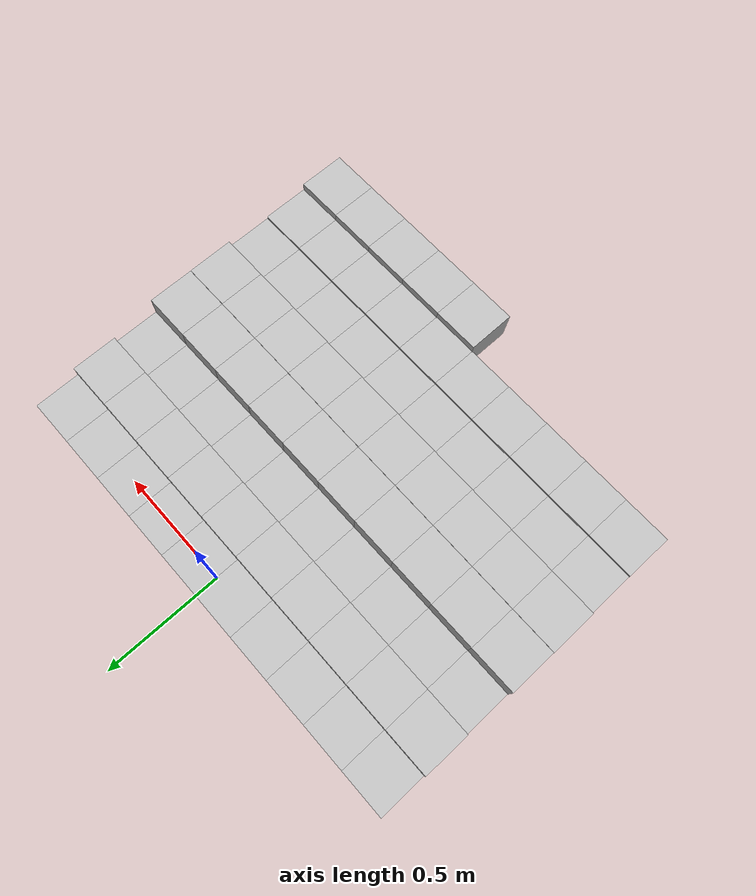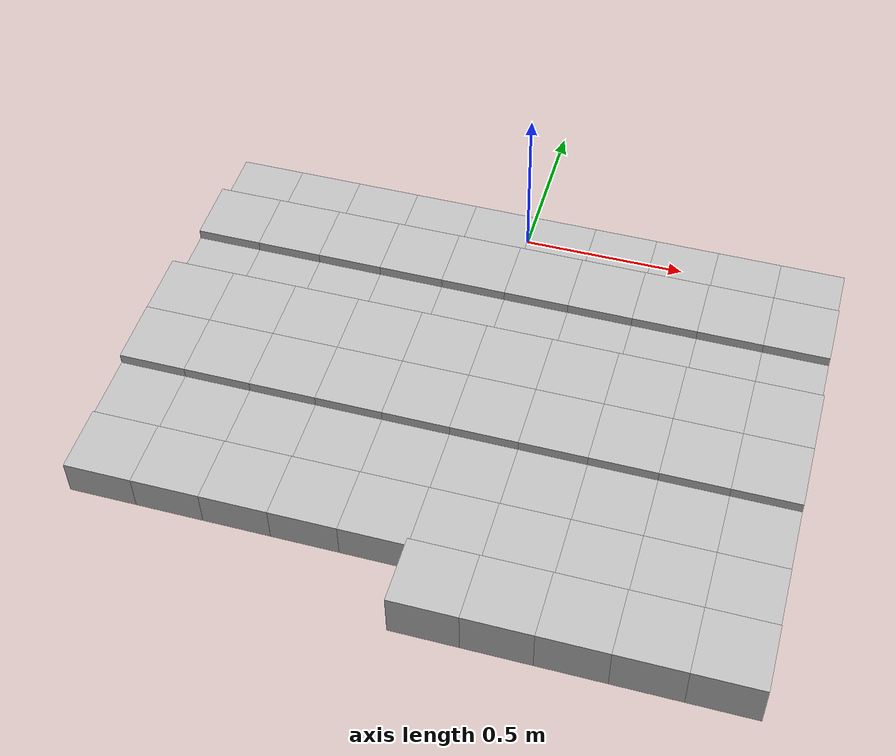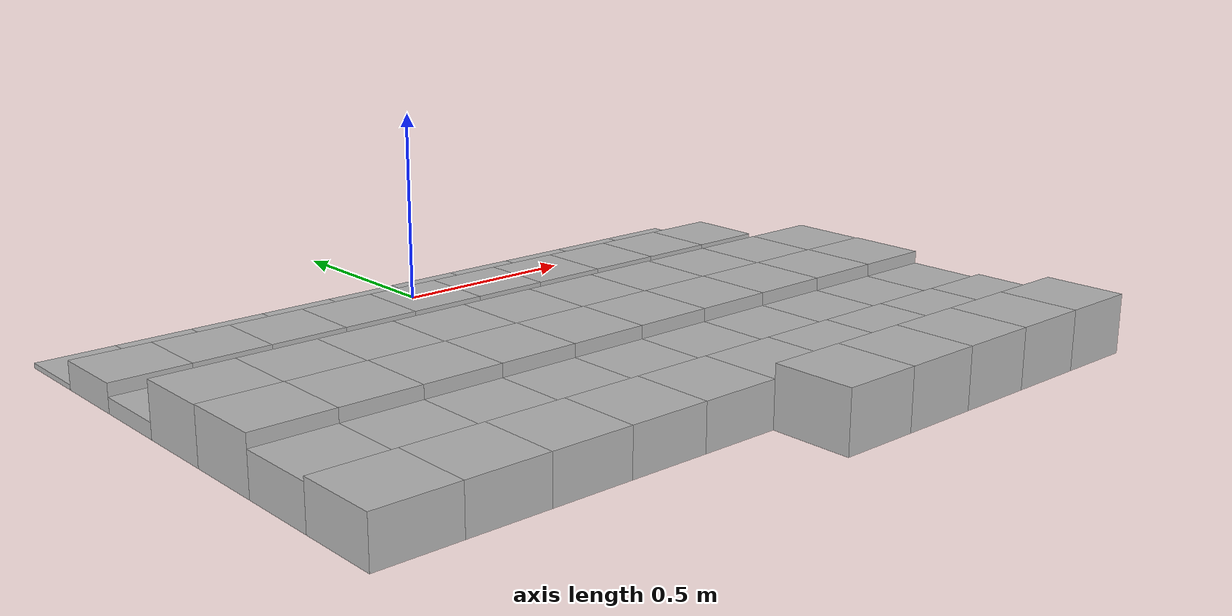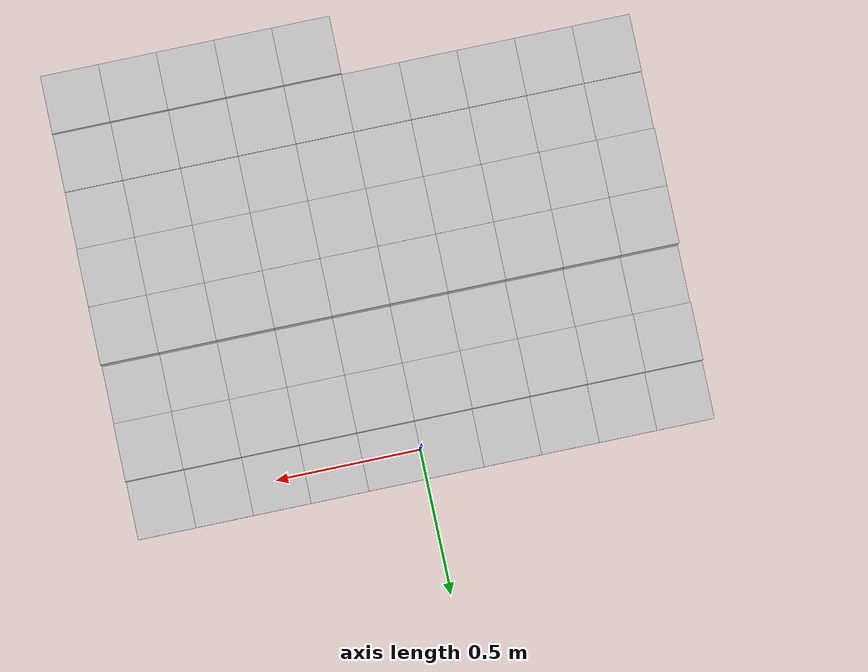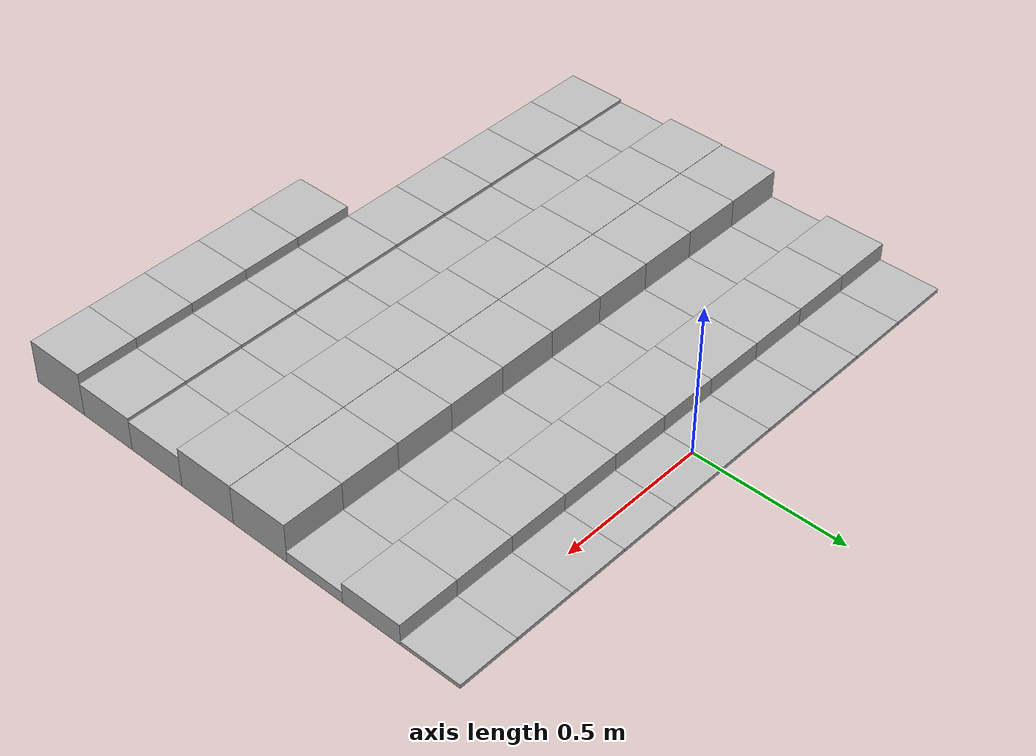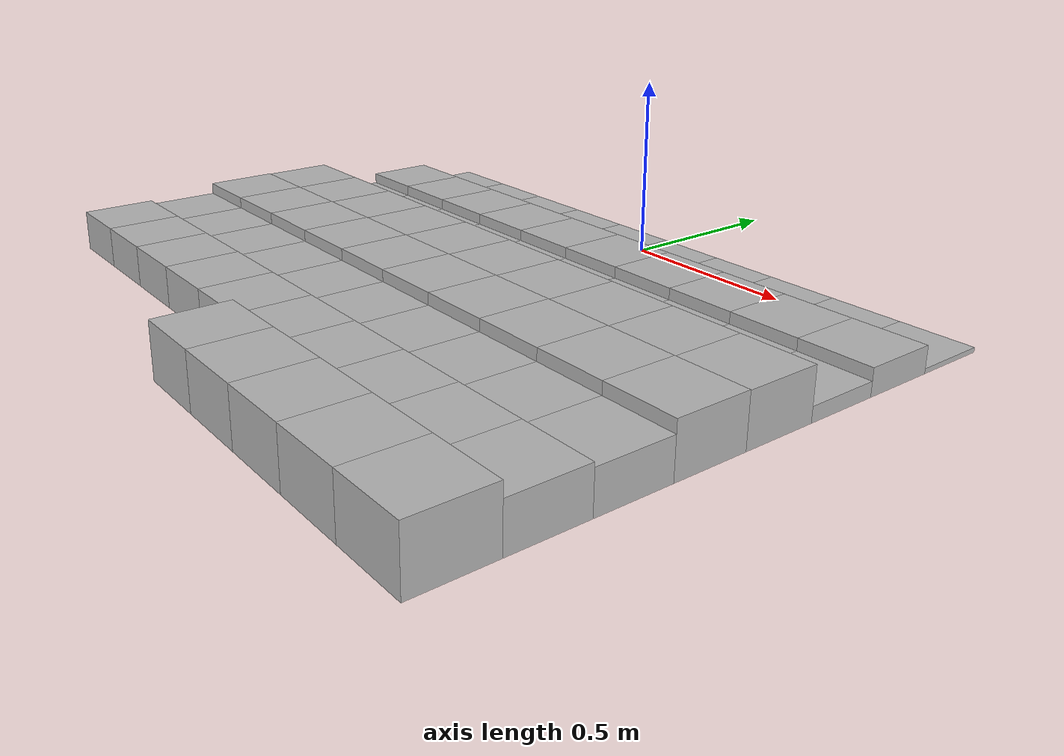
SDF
<sdf version="1.6">
 <model name="Terrain">
  <static>true</static>
  <link name="box_0_0">
   <pose>-0.9 0.0 0.00630163186616 0 0 0</pose>
   <inertial>
    <mass>1.0</mass>
    <inertia><ixx>0.0</ixx><ixy>0.0</ixy><ixz>0.0</ixz><iyy>0.0</iyy><iyz>0.0</iyz><izz>0.0</izz></inertia>
   </inertial>
   <collision name="collision"><geometry><box><size>0.2 0.2 0.0126032637323</size></box></geometry></collision>
   <visual name="visual"><geometry><box><size>0.2 0.2 0.0126032637323</size></box></geometry></visual>
  </link>
  <link name="box_0_1">
   <pose>-0.7 0.0 0.00630163186616 0 0 0</pose>
   <inertial>
    <mass>1.0</mass>
    <inertia><ixx>0.0</ixx><ixy>0.0</ixy><ixz>0.0</ixz><iyy>0.0</iyy><iyz>0.0</iyz><izz>0.0</izz></inertia>
   </inertial>
   <collision name="collision"><geometry><box><size>0.2 0.2 0.0126032637323</size></box></geometry></collision>
   <visual name="visual"><geometry><box><size>0.2 0.2 0.0126032637323</size></box></geometry></visual>
  </link>
  <link name="box_0_2">
   <pose>-0.5 0.0 0.00630163186616 0 0 0</pose>
   <inertial>
    <mass>1.0</mass>
    <inertia><ixx>0.0</ixx><ixy>0.0</ixy><ixz>0.0</ixz><iyy>0.0</iyy><iyz>0.0</iyz><izz>0.0</izz></inertia>
   </inertial>
   <collision name="collision"><geometry><box><size>0.2 0.2 0.0126032637323</size></box></geometry></collision>
   <visual name="visual"><geometry><box><size>0.2 0.2 0.0126032637323</size></box></geometry></visual>
  </link>
  <link name="box_0_3">
   <pose>-0.3 0.0 0.00630163186616 0 0 0</pose>
   <inertial>
    <mass>1.0</mass>
    <inertia><ixx>0.0</ixx><ixy>0.0</ixy><ixz>0.0</ixz><iyy>0.0</iyy><iyz>0.0</iyz><izz>0.0</izz></inertia>
   </inertial>
   <collision name="collision"><geometry><box><size>0.2 0.2 0.0126032637323</size></box></geometry></collision>
   <visual name="visual"><geometry><box><size>0.2 0.2 0.0126032637323</size></box></geometry></visual>
  </link>
  <link name="box_0_4">
   <pose>-0.1 0.0 0.00630163186616 0 0 0</pose>
   <inertial>
    <mass>1.0</mass>
    <inertia><ixx>0.0</ixx><ixy>0.0</ixy><ixz>0.0</ixz><iyy>0.0</iyy><iyz>0.0</iyz><izz>0.0</izz></inertia>
   </inertial>
   <collision name="collision"><geometry><box><size>0.2 0.2 0.0126032637323</size></box></geometry></collision>
   <visual name="visual"><geometry><box><size>0.2 0.2 0.0126032637323</size></box></geometry></visual>
  </link>
  <link name="box_0_5">
   <pose>0.1 0.0 0.00630163186616 0 0 0</pose>
   <inertial>
    <mass>1.0</mass>
    <inertia><ixx>0.0</ixx><ixy>0.0</ixy><ixz>0.0</ixz><iyy>0.0</iyy><iyz>0.0</iyz><izz>0.0</izz></inertia>
   </inertial>
   <collision name="collision"><geometry><box><size>0.2 0.2 0.0126032637323</size></box></geometry></collision>
   <visual name="visual"><geometry><box><size>0.2 0.2 0.0126032637323</size></box></geometry></visual>
  </link>
  <link name="box_0_6">
   <pose>0.3 0.0 0.00630163186616 0 0 0</pose>
   <inertial>
    <mass>1.0</mass>
    <inertia><ixx>0.0</ixx><ixy>0.0</ixy><ixz>0.0</ixz><iyy>0.0</iyy><iyz>0.0</iyz><izz>0.0</izz></inertia>
   </inertial>
   <collision name="collision"><geometry><box><size>0.2 0.2 0.0126032637323</size></box></geometry></collision>
   <visual name="visual"><geometry><box><size>0.2 0.2 0.0126032637323</size></box></geometry></visual>
  </link>
  <link name="box_0_7">
   <pose>0.5 0.0 0.00630163186616 0 0 0</pose>
   <inertial>
    <mass>1.0</mass>
    <inertia><ixx>0.0</ixx><ixy>0.0</ixy><ixz>0.0</ixz><iyy>0.0</iyy><iyz>0.0</iyz><izz>0.0</izz></inertia>
   </inertial>
   <collision name="collision"><geometry><box><size>0.2 0.2 0.0126032637323</size></box></geometry></collision>
   <visual name="visual"><geometry><box><size>0.2 0.2 0.0126032637323</size></box></geometry></visual>
  </link>
  <link name="box_0_8">
   <pose>0.7 0.0 0.00630163186616 0 0 0</pose>
   <inertial>
    <mass>1.0</mass>
    <inertia><ixx>0.0</ixx><ixy>0.0</ixy><ixz>0.0</ixz><iyy>0.0</iyy><iyz>0.0</iyz><izz>0.0</izz></inertia>
   </inertial>
   <collision name="collision"><geometry><box><size>0.2 0.2 0.0126032637323</size></box></geometry></collision>
   <visual name="visual"><geometry><box><size>0.2 0.2 0.0126032637323</size></box></geometry></visual>
  </link>
  <link name="box_0_9">
   <pose>0.9 0.0 0.00630163186616 0 0 0</pose>
   <inertial>
    <mass>1.0</mass>
    <inertia><ixx>0.0</ixx><ixy>0.0</ixy><ixz>0.0</ixz><iyy>0.0</iyy><iyz>0.0</iyz><izz>0.0</izz></inertia>
   </inertial>
   <collision name="collision"><geometry><box><size>0.2 0.2 0.0126032637323</size></box></geometry></collision>
   <visual name="visual"><geometry><box><size>0.2 0.2 0.0126032637323</size></box></geometry></visual>
  </link>
  <link name="box_1_0">
   <pose>-0.9 -0.2 0.0350812157766 0 0 0</pose>
   <inertial>
    <mass>1.0</mass>
    <inertia><ixx>0.0</ixx><ixy>0.0</ixy><ixz>0.0</ixz><iyy>0.0</iyy><iyz>0.0</iyz><izz>0.0</izz></inertia>
   </inertial>
   <collision name="collision"><geometry><box><size>0.2 0.2 0.0701624315533</size></box></geometry></collision>
   <visual name="visual"><geometry><box><size>0.2 0.2 0.0701624315533</size></box></geometry></visual>
  </link>
  <link name="box_1_1">
   <pose>-0.7 -0.2 0.0350812157766 0 0 0</pose>
   <inertial>
    <mass>1.0</mass>
    <inertia><ixx>0.0</ixx><ixy>0.0</ixy><ixz>0.0</ixz><iyy>0.0</iyy><iyz>0.0</iyz><izz>0.0</izz></inertia>
   </inertial>
   <collision name="collision"><geometry><box><size>0.2 0.2 0.0701624315533</size></box></geometry></collision>
   <visual name="visual"><geometry><box><size>0.2 0.2 0.0701624315533</size></box></geometry></visual>
  </link>
  <link name="box_1_2">
   <pose>-0.5 -0.2 0.0350812157766 0 0 0</pose>
   <inertial>
    <mass>1.0</mass>
    <inertia><ixx>0.0</ixx><ixy>0.0</ixy><ixz>0.0</ixz><iyy>0.0</iyy><iyz>0.0</iyz><izz>0.0</izz></inertia>
   </inertial>
   <collision name="collision"><geometry><box><size>0.2 0.2 0.0701624315533</size></box></geometry></collision>
   <visual name="visual"><geometry><box><size>0.2 0.2 0.0701624315533</size></box></geometry></visual>
  </link>
  <link name="box_1_3">
   <pose>-0.3 -0.2 0.0350812157766 0 0 0</pose>
   <inertial>
    <mass>1.0</mass>
    <inertia><ixx>0.0</ixx><ixy>0.0</ixy><ixz>0.0</ixz><iyy>0.0</iyy><iyz>0.0</iyz><izz>0.0</izz></inertia>
   </inertial>
   <collision name="collision"><geometry><box><size>0.2 0.2 0.0701624315533</size></box></geometry></collision>
   <visual name="visual"><geometry><box><size>0.2 0.2 0.0701624315533</size></box></geometry></visual>
  </link>
  <link name="box_1_4">
   <pose>-0.1 -0.2 0.0350812157766 0 0 0</pose>
   <inertial>
    <mass>1.0</mass>
    <inertia><ixx>0.0</ixx><ixy>0.0</ixy><ixz>0.0</ixz><iyy>0.0</iyy><iyz>0.0</iyz><izz>0.0</izz></inertia>
   </inertial>
   <collision name="collision"><geometry><box><size>0.2 0.2 0.0701624315533</size></box></geometry></collision>
   <visual name="visual"><geometry><box><size>0.2 0.2 0.0701624315533</size></box></geometry></visual>
  </link>
  <link name="box_1_5">
   <pose>0.1 -0.2 0.0350812157766 0 0 0</pose>
   <inertial>
    <mass>1.0</mass>
    <inertia><ixx>0.0</ixx><ixy>0.0</ixy><ixz>0.0</ixz><iyy>0.0</iyy><iyz>0.0</iyz><izz>0.0</izz></inertia>
   </inertial>
   <collision name="collision"><geometry><box><size>0.2 0.2 0.0701624315533</size></box></geometry></collision>
   <visual name="visual"><geometry><box><size>0.2 0.2 0.0701624315533</size></box></geometry></visual>
  </link>
  <link name="box_1_6">
   <pose>0.3 -0.2 0.0350812157766 0 0 0</pose>
   <inertial>
    <mass>1.0</mass>
    <inertia><ixx>0.0</ixx><ixy>0.0</ixy><ixz>0.0</ixz><iyy>0.0</iyy><iyz>0.0</iyz><izz>0.0</izz></inertia>
   </inertial>
   <collision name="collision"><geometry><box><size>0.2 0.2 0.0701624315533</size></box></geometry></collision>
   <visual name="visual"><geometry><box><size>0.2 0.2 0.0701624315533</size></box></geometry></visual>
  </link>
  <link name="box_1_7">
   <pose>0.5 -0.2 0.0350812157766 0 0 0</pose>
   <inertial>
    <mass>1.0</mass>
    <inertia><ixx>0.0</ixx><ixy>0.0</ixy><ixz>0.0</ixz><iyy>0.0</iyy><iyz>0.0</iyz><izz>0.0</izz></inertia>
   </inertial>
   <collision name="collision"><geometry><box><size>0.2 0.2 0.0701624315533</size></box></geometry></collision>
   <visual name="visual"><geometry><box><size>0.2 0.2 0.0701624315533</size></box></geometry></visual>
  </link>
  <link name="box_1_8">
   <pose>0.7 -0.2 0.0350812157766 0 0 0</pose>
   <inertial>
    <mass>1.0</mass>
    <inertia><ixx>0.0</ixx><ixy>0.0</ixy><ixz>0.0</ixz><iyy>0.0</iyy><iyz>0.0</iyz><izz>0.0</izz></inertia>
   </inertial>
   <collision name="collision"><geometry><box><size>0.2 0.2 0.0701624315533</size></box></geometry></collision>
   <visual name="visual"><geometry><box><size>0.2 0.2 0.0701624315533</size></box></geometry></visual>
  </link>
  <link name="box_1_9">
   <pose>0.9 -0.2 0.0350812157766 0 0 0</pose>
   <inertial>
    <mass>1.0</mass>
    <inertia><ixx>0.0</ixx><ixy>0.0</ixy><ixz>0.0</ixz><iyy>0.0</iyy><iyz>0.0</iyz><izz>0.0</izz></inertia>
   </inertial>
   <collision name="collision"><geometry><box><size>0.2 0.2 0.0701624315533</size></box></geometry></collision>
   <visual name="visual"><geometry><box><size>0.2 0.2 0.0701624315533</size></box></geometry></visual>
  </link>
  <link name="box_2_0">
   <pose>-0.9 -0.4 0.0192348702279 0 0 0</pose>
   <inertial>
    <mass>1.0</mass>
    <inertia><ixx>0.0</ixx><ixy>0.0</ixy><ixz>0.0</ixz><iyy>0.0</iyy><iyz>0.0</iyz><izz>0.0</izz></inertia>
   </inertial>
   <collision name="collision"><geometry><box><size>0.2 0.2 0.0384697404557</size></box></geometry></collision>
   <visual name="visual"><geometry><box><size>0.2 0.2 0.0384697404557</size></box></geometry></visual>
  </link>
  <link name="box_2_1">
   <pose>-0.7 -0.4 0.0192348702279 0 0 0</pose>
   <inertial>
    <mass>1.0</mass>
    <inertia><ixx>0.0</ixx><ixy>0.0</ixy><ixz>0.0</ixz><iyy>0.0</iyy><iyz>0.0</iyz><izz>0.0</izz></inertia>
   </inertial>
   <collision name="collision"><geometry><box><size>0.2 0.2 0.0384697404557</size></box></geometry></collision>
   <visual name="visual"><geometry><box><size>0.2 0.2 0.0384697404557</size></box></geometry></visual>
  </link>
  <link name="box_2_2">
   <pose>-0.5 -0.4 0.0192348702279 0 0 0</pose>
   <inertial>
    <mass>1.0</mass>
    <inertia><ixx>0.0</ixx><ixy>0.0</ixy><ixz>0.0</ixz><iyy>0.0</iyy><iyz>0.0</iyz><izz>0.0</izz></inertia>
   </inertial>
   <collision name="collision"><geometry><box><size>0.2 0.2 0.0384697404557</size></box></geometry></collision>
   <visual name="visual"><geometry><box><size>0.2 0.2 0.0384697404557</size></box></geometry></visual>
  </link>
  <link name="box_2_3">
   <pose>-0.3 -0.4 0.0192348702279 0 0 0</pose>
   <inertial>
    <mass>1.0</mass>
    <inertia><ixx>0.0</ixx><ixy>0.0</ixy><ixz>0.0</ixz><iyy>0.0</iyy><iyz>0.0</iyz><izz>0.0</izz></inertia>
   </inertial>
   <collision name="collision"><geometry><box><size>0.2 0.2 0.0384697404557</size></box></geometry></collision>
   <visual name="visual"><geometry><box><size>0.2 0.2 0.0384697404557</size></box></geometry></visual>
  </link>
  <link name="box_2_4">
   <pose>-0.1 -0.4 0.0192348702279 0 0 0</pose>
   <inertial>
    <mass>1.0</mass>
    <inertia><ixx>0.0</ixx><ixy>0.0</ixy><ixz>0.0</ixz><iyy>0.0</iyy><iyz>0.0</iyz><izz>0.0</izz></inertia>
   </inertial>
   <collision name="collision"><geometry><box><size>0.2 0.2 0.0384697404557</size></box></geometry></collision>
   <visual name="visual"><geometry><box><size>0.2 0.2 0.0384697404557</size></box></geometry></visual>
  </link>
  <link name="box_2_5">
   <pose>0.1 -0.4 0.0192348702279 0 0 0</pose>
   <inertial>
    <mass>1.0</mass>
    <inertia><ixx>0.0</ixx><ixy>0.0</ixy><ixz>0.0</ixz><iyy>0.0</iyy><iyz>0.0</iyz><izz>0.0</izz></inertia>
   </inertial>
   <collision name="collision"><geometry><box><size>0.2 0.2 0.0384697404557</size></box></geometry></collision>
   <visual name="visual"><geometry><box><size>0.2 0.2 0.0384697404557</size></box></geometry></visual>
  </link>
  <link name="box_2_6">
   <pose>0.3 -0.4 0.0192348702279 0 0 0</pose>
   <inertial>
    <mass>1.0</mass>
    <inertia><ixx>0.0</ixx><ixy>0.0</ixy><ixz>0.0</ixz><iyy>0.0</iyy><iyz>0.0</iyz><izz>0.0</izz></inertia>
   </inertial>
   <collision name="collision"><geometry><box><size>0.2 0.2 0.0384697404557</size></box></geometry></collision>
   <visual name="visual"><geometry><box><size>0.2 0.2 0.0384697404557</size></box></geometry></visual>
  </link>
  <link name="box_2_7">
   <pose>0.5 -0.4 0.0192348702279 0 0 0</pose>
   <inertial>
    <mass>1.0</mass>
    <inertia><ixx>0.0</ixx><ixy>0.0</ixy><ixz>0.0</ixz><iyy>0.0</iyy><iyz>0.0</iyz><izz>0.0</izz></inertia>
   </inertial>
   <collision name="collision"><geometry><box><size>0.2 0.2 0.0384697404557</size></box></geometry></collision>
   <visual name="visual"><geometry><box><size>0.2 0.2 0.0384697404557</size></box></geometry></visual>
  </link>
  <link name="box_2_8">
   <pose>0.7 -0.4 0.0192348702279 0 0 0</pose>
   <inertial>
    <mass>1.0</mass>
    <inertia><ixx>0.0</ixx><ixy>0.0</ixy><ixz>0.0</ixz><iyy>0.0</iyy><iyz>0.0</iyz><izz>0.0</izz></inertia>
   </inertial>
   <collision name="collision"><geometry><box><size>0.2 0.2 0.0384697404557</size></box></geometry></collision>
   <visual name="visual"><geometry><box><size>0.2 0.2 0.0384697404557</size></box></geometry></visual>
  </link>
  <link name="box_2_9">
   <pose>0.9 -0.4 0.0192348702279 0 0 0</pose>
   <inertial>
    <mass>1.0</mass>
    <inertia><ixx>0.0</ixx><ixy>0.0</ixy><ixz>0.0</ixz><iyy>0.0</iyy><iyz>0.0</iyz><izz>0.0</izz></inertia>
   </inertial>
   <collision name="collision"><geometry><box><size>0.2 0.2 0.0384697404557</size></box></geometry></collision>
   <visual name="visual"><geometry><box><size>0.2 0.2 0.0384697404557</size></box></geometry></visual>
  </link>
  <link name="box_3_0">
   <pose>-0.9 -0.6 0.0663468278791 0 0 0</pose>
   <inertial>
    <mass>1.0</mass>
    <inertia><ixx>0.0</ixx><ixy>0.0</ixy><ixz>0.0</ixz><iyy>0.0</iyy><iyz>0.0</iyz><izz>0.0</izz></inertia>
   </inertial>
   <collision name="collision"><geometry><box><size>0.2 0.2 0.132693655758</size></box></geometry></collision>
   <visual name="visual"><geometry><box><size>0.2 0.2 0.132693655758</size></box></geometry></visual>
  </link>
  <link name="box_3_1">
   <pose>-0.7 -0.6 0.0663468278791 0 0 0</pose>
   <inertial>
    <mass>1.0</mass>
    <inertia><ixx>0.0</ixx><ixy>0.0</ixy><ixz>0.0</ixz><iyy>0.0</iyy><iyz>0.0</iyz><izz>0.0</izz></inertia>
   </inertial>
   <collision name="collision"><geometry><box><size>0.2 0.2 0.132693655758</size></box></geometry></collision>
   <visual name="visual"><geometry><box><size>0.2 0.2 0.132693655758</size></box></geometry></visual>
  </link>
  <link name="box_3_2">
   <pose>-0.5 -0.6 0.0663468278791 0 0 0</pose>
   <inertial>
    <mass>1.0</mass>
    <inertia><ixx>0.0</ixx><ixy>0.0</ixy><ixz>0.0</ixz><iyy>0.0</iyy><iyz>0.0</iyz><izz>0.0</izz></inertia>
   </inertial>
   <collision name="collision"><geometry><box><size>0.2 0.2 0.132693655758</size></box></geometry></collision>
   <visual name="visual"><geometry><box><size>0.2 0.2 0.132693655758</size></box></geometry></visual>
  </link>
  <link name="box_3_3">
   <pose>-0.3 -0.6 0.0663468278791 0 0 0</pose>
   <inertial>
    <mass>1.0</mass>
    <inertia><ixx>0.0</ixx><ixy>0.0</ixy><ixz>0.0</ixz><iyy>0.0</iyy><iyz>0.0</iyz><izz>0.0</izz></inertia>
   </inertial>
   <collision name="collision"><geometry><box><size>0.2 0.2 0.132693655758</size></box></geometry></collision>
   <visual name="visual"><geometry><box><size>0.2 0.2 0.132693655758</size></box></geometry></visual>
  </link>
  <link name="box_3_4">
   <pose>-0.1 -0.6 0.0663468278791 0 0 0</pose>
   <inertial>
    <mass>1.0</mass>
    <inertia><ixx>0.0</ixx><ixy>0.0</ixy><ixz>0.0</ixz><iyy>0.0</iyy><iyz>0.0</iyz><izz>0.0</izz></inertia>
   </inertial>
   <collision name="collision"><geometry><box><size>0.2 0.2 0.132693655758</size></box></geometry></collision>
   <visual name="visual"><geometry><box><size>0.2 0.2 0.132693655758</size></box></geometry></visual>
  </link>
  <link name="box_3_5">
   <pose>0.1 -0.6 0.0663468278791 0 0 0</pose>
   <inertial>
    <mass>1.0</mass>
    <inertia><ixx>0.0</ixx><ixy>0.0</ixy><ixz>0.0</ixz><iyy>0.0</iyy><iyz>0.0</iyz><izz>0.0</izz></inertia>
   </inertial>
   <collision name="collision"><geometry><box><size>0.2 0.2 0.132693655758</size></box></geometry></collision>
   <visual name="visual"><geometry><box><size>0.2 0.2 0.132693655758</size></box></geometry></visual>
  </link>
  <link name="box_3_6">
   <pose>0.3 -0.6 0.0663468278791 0 0 0</pose>
   <inertial>
    <mass>1.0</mass>
    <inertia><ixx>0.0</ixx><ixy>0.0</ixy><ixz>0.0</ixz><iyy>0.0</iyy><iyz>0.0</iyz><izz>0.0</izz></inertia>
   </inertial>
   <collision name="collision"><geometry><box><size>0.2 0.2 0.132693655758</size></box></geometry></collision>
   <visual name="visual"><geometry><box><size>0.2 0.2 0.132693655758</size></box></geometry></visual>
  </link>
  <link name="box_3_7">
   <pose>0.5 -0.6 0.0663468278791 0 0 0</pose>
   <inertial>
    <mass>1.0</mass>
    <inertia><ixx>0.0</ixx><ixy>0.0</ixy><ixz>0.0</ixz><iyy>0.0</iyy><iyz>0.0</iyz><izz>0.0</izz></inertia>
   </inertial>
   <collision name="collision"><geometry><box><size>0.2 0.2 0.132693655758</size></box></geometry></collision>
   <visual name="visual"><geometry><box><size>0.2 0.2 0.132693655758</size></box></geometry></visual>
  </link>
  <link name="box_3_8">
   <pose>0.7 -0.6 0.0663468278791 0 0 0</pose>
   <inertial>
    <mass>1.0</mass>
    <inertia><ixx>0.0</ixx><ixy>0.0</ixy><ixz>0.0</ixz><iyy>0.0</iyy><iyz>0.0</iyz><izz>0.0</izz></inertia>
   </inertial>
   <collision name="collision"><geometry><box><size>0.2 0.2 0.132693655758</size></box></geometry></collision>
   <visual name="visual"><geometry><box><size>0.2 0.2 0.132693655758</size></box></geometry></visual>
  </link>
  <link name="box_3_9">
   <pose>0.9 -0.6 0.0663468278791 0 0 0</pose>
   <inertial>
    <mass>1.0</mass>
    <inertia><ixx>0.0</ixx><ixy>0.0</ixy><ixz>0.0</ixz><iyy>0.0</iyy><iyz>0.0</iyz><izz>0.0</izz></inertia>
   </inertial>
   <collision name="collision"><geometry><box><size>0.2 0.2 0.132693655758</size></box></geometry></collision>
   <visual name="visual"><geometry><box><size>0.2 0.2 0.132693655758</size></box></geometry></visual>
  </link>
  <link name="box_4_0">
   <pose>-0.9 -0.8 0.0670598554745 0 0 0</pose>
   <inertial>
    <mass>1.0</mass>
    <inertia><ixx>0.0</ixx><ixy>0.0</ixy><ixz>0.0</ixz><iyy>0.0</iyy><iyz>0.0</iyz><izz>0.0</izz></inertia>
   </inertial>
   <collision name="collision"><geometry><box><size>0.2 0.2 0.134119710949</size></box></geometry></collision>
   <visual name="visual"><geometry><box><size>0.2 0.2 0.134119710949</size></box></geometry></visual>
  </link>
  <link name="box_4_1">
   <pose>-0.7 -0.8 0.0670598554745 0 0 0</pose>
   <inertial>
    <mass>1.0</mass>
    <inertia><ixx>0.0</ixx><ixy>0.0</ixy><ixz>0.0</ixz><iyy>0.0</iyy><iyz>0.0</iyz><izz>0.0</izz></inertia>
   </inertial>
   <collision name="collision"><geometry><box><size>0.2 0.2 0.134119710949</size></box></geometry></collision>
   <visual name="visual"><geometry><box><size>0.2 0.2 0.134119710949</size></box></geometry></visual>
  </link>
  <link name="box_4_2">
   <pose>-0.5 -0.8 0.0670598554745 0 0 0</pose>
   <inertial>
    <mass>1.0</mass>
    <inertia><ixx>0.0</ixx><ixy>0.0</ixy><ixz>0.0</ixz><iyy>0.0</iyy><iyz>0.0</iyz><izz>0.0</izz></inertia>
   </inertial>
   <collision name="collision"><geometry><box><size>0.2 0.2 0.134119710949</size></box></geometry></collision>
   <visual name="visual"><geometry><box><size>0.2 0.2 0.134119710949</size></box></geometry></visual>
  </link>
  <link name="box_4_3">
   <pose>-0.3 -0.8 0.0670598554745 0 0 0</pose>
   <inertial>
    <mass>1.0</mass>
    <inertia><ixx>0.0</ixx><ixy>0.0</ixy><ixz>0.0</ixz><iyy>0.0</iyy><iyz>0.0</iyz><izz>0.0</izz></inertia>
   </inertial>
   <collision name="collision"><geometry><box><size>0.2 0.2 0.134119710949</size></box></geometry></collision>
   <visual name="visual"><geometry><box><size>0.2 0.2 0.134119710949</size></box></geometry></visual>
  </link>
  <link name="box_4_4">
   <pose>-0.1 -0.8 0.0670598554745 0 0 0</pose>
   <inertial>
    <mass>1.0</mass>
    <inertia><ixx>0.0</ixx><ixy>0.0</ixy><ixz>0.0</ixz><iyy>0.0</iyy><iyz>0.0</iyz><izz>0.0</izz></inertia>
   </inertial>
   <collision name="collision"><geometry><box><size>0.2 0.2 0.134119710949</size></box></geometry></collision>
   <visual name="visual"><geometry><box><size>0.2 0.2 0.134119710949</size></box></geometry></visual>
  </link>
  <link name="box_4_5">
   <pose>0.1 -0.8 0.0670598554745 0 0 0</pose>
   <inertial>
    <mass>1.0</mass>
    <inertia><ixx>0.0</ixx><ixy>0.0</ixy><ixz>0.0</ixz><iyy>0.0</iyy><iyz>0.0</iyz><izz>0.0</izz></inertia>
   </inertial>
   <collision name="collision"><geometry><box><size>0.2 0.2 0.134119710949</size></box></geometry></collision>
   <visual name="visual"><geometry><box><size>0.2 0.2 0.134119710949</size></box></geometry></visual>
  </link>
  <link name="box_4_6">
   <pose>0.3 -0.8 0.0670598554745 0 0 0</pose>
   <inertial>
    <mass>1.0</mass>
    <inertia><ixx>0.0</ixx><ixy>0.0</ixy><ixz>0.0</ixz><iyy>0.0</iyy><iyz>0.0</iyz><izz>0.0</izz></inertia>
   </inertial>
   <collision name="collision"><geometry><box><size>0.2 0.2 0.134119710949</size></box></geometry></collision>
   <visual name="visual"><geometry><box><size>0.2 0.2 0.134119710949</size></box></geometry></visual>
  </link>
  <link name="box_4_7">
   <pose>0.5 -0.8 0.0670598554745 0 0 0</pose>
   <inertial>
    <mass>1.0</mass>
    <inertia><ixx>0.0</ixx><ixy>0.0</ixy><ixz>0.0</ixz><iyy>0.0</iyy><iyz>0.0</iyz><izz>0.0</izz></inertia>
   </inertial>
   <collision name="collision"><geometry><box><size>0.2 0.2 0.134119710949</size></box></geometry></collision>
   <visual name="visual"><geometry><box><size>0.2 0.2 0.134119710949</size></box></geometry></visual>
  </link>
  <link name="box_4_8">
   <pose>0.7 -0.8 0.0670598554745 0 0 0</pose>
   <inertial>
    <mass>1.0</mass>
    <inertia><ixx>0.0</ixx><ixy>0.0</ixy><ixz>0.0</ixz><iyy>0.0</iyy><iyz>0.0</iyz><izz>0.0</izz></inertia>
   </inertial>
   <collision name="collision"><geometry><box><size>0.2 0.2 0.134119710949</size></box></geometry></collision>
   <visual name="visual"><geometry><box><size>0.2 0.2 0.134119710949</size></box></geometry></visual>
  </link>
  <link name="box_4_9">
   <pose>0.9 -0.8 0.0670598554745 0 0 0</pose>
   <inertial>
    <mass>1.0</mass>
    <inertia><ixx>0.0</ixx><ixy>0.0</ixy><ixz>0.0</ixz><iyy>0.0</iyy><iyz>0.0</iyz><izz>0.0</izz></inertia>
   </inertial>
   <collision name="collision"><geometry><box><size>0.2 0.2 0.134119710949</size></box></geometry></collision>
   <visual name="visual"><geometry><box><size>0.2 0.2 0.134119710949</size></box></geometry></visual>
  </link>
  <link name="box_5_0">
   <pose>-0.9 -1.0 0.0510108650901 0 0 0</pose>
   <inertial>
    <mass>1.0</mass>
    <inertia><ixx>0.0</ixx><ixy>0.0</ixy><ixz>0.0</ixz><iyy>0.0</iyy><iyz>0.0</iyz><izz>0.0</izz></inertia>
   </inertial>
   <collision name="collision"><geometry><box><size>0.2 0.2 0.10202173018</size></box></geometry></collision>
   <visual name="visual"><geometry><box><size>0.2 0.2 0.10202173018</size></box></geometry></visual>
  </link>
  <link name="box_5_1">
   <pose>-0.7 -1.0 0.0510108650901 0 0 0</pose>
   <inertial>
    <mass>1.0</mass>
    <inertia><ixx>0.0</ixx><ixy>0.0</ixy><ixz>0.0</ixz><iyy>0.0</iyy><iyz>0.0</iyz><izz>0.0</izz></inertia>
   </inertial>
   <collision name="collision"><geometry><box><size>0.2 0.2 0.10202173018</size></box></geometry></collision>
   <visual name="visual"><geometry><box><size>0.2 0.2 0.10202173018</size></box></geometry></visual>
  </link>
  <link name="box_5_2">
   <pose>-0.5 -1.0 0.0510108650901 0 0 0</pose>
   <inertial>
    <mass>1.0</mass>
    <inertia><ixx>0.0</ixx><ixy>0.0</ixy><ixz>0.0</ixz><iyy>0.0</iyy><iyz>0.0</iyz><izz>0.0</izz></inertia>
   </inertial>
   <collision name="collision"><geometry><box><size>0.2 0.2 0.10202173018</size></box></geometry></collision>
   <visual name="visual"><geometry><box><size>0.2 0.2 0.10202173018</size></box></geometry></visual>
  </link>
  <link name="box_5_3">
   <pose>-0.3 -1.0 0.0510108650901 0 0 0</pose>
   <inertial>
    <mass>1.0</mass>
    <inertia><ixx>0.0</ixx><ixy>0.0</ixy><ixz>0.0</ixz><iyy>0.0</iyy><iyz>0.0</iyz><izz>0.0</izz></inertia>
   </inertial>
   <collision name="collision"><geometry><box><size>0.2 0.2 0.10202173018</size></box></geometry></collision>
   <visual name="visual"><geometry><box><size>0.2 0.2 0.10202173018</size></box></geometry></visual>
  </link>
  <link name="box_5_4">
   <pose>-0.1 -1.0 0.0510108650901 0 0 0</pose>
   <inertial>
    <mass>1.0</mass>
    <inertia><ixx>0.0</ixx><ixy>0.0</ixy><ixz>0.0</ixz><iyy>0.0</iyy><iyz>0.0</iyz><izz>0.0</izz></inertia>
   </inertial>
   <collision name="collision"><geometry><box><size>0.2 0.2 0.10202173018</size></box></geometry></collision>
   <visual name="visual"><geometry><box><size>0.2 0.2 0.10202173018</size></box></geometry></visual>
  </link>
  <link name="box_5_5">
   <pose>0.1 -1.0 0.0510108650901 0 0 0</pose>
   <inertial>
    <mass>1.0</mass>
    <inertia><ixx>0.0</ixx><ixy>0.0</ixy><ixz>0.0</ixz><iyy>0.0</iyy><iyz>0.0</iyz><izz>0.0</izz></inertia>
   </inertial>
   <collision name="collision"><geometry><box><size>0.2 0.2 0.10202173018</size></box></geometry></collision>
   <visual name="visual"><geometry><box><size>0.2 0.2 0.10202173018</size></box></geometry></visual>
  </link>
  <link name="box_5_6">
   <pose>0.3 -1.0 0.0510108650901 0 0 0</pose>
   <inertial>
    <mass>1.0</mass>
    <inertia><ixx>0.0</ixx><ixy>0.0</ixy><ixz>0.0</ixz><iyy>0.0</iyy><iyz>0.0</iyz><izz>0.0</izz></inertia>
   </inertial>
   <collision name="collision"><geometry><box><size>0.2 0.2 0.10202173018</size></box></geometry></collision>
   <visual name="visual"><geometry><box><size>0.2 0.2 0.10202173018</size></box></geometry></visual>
  </link>
  <link name="box_5_7">
   <pose>0.5 -1.0 0.0510108650901 0 0 0</pose>
   <inertial>
    <mass>1.0</mass>
    <inertia><ixx>0.0</ixx><ixy>0.0</ixy><ixz>0.0</ixz><iyy>0.0</iyy><iyz>0.0</iyz><izz>0.0</izz></inertia>
   </inertial>
   <collision name="collision"><geometry><box><size>0.2 0.2 0.10202173018</size></box></geometry></collision>
   <visual name="visual"><geometry><box><size>0.2 0.2 0.10202173018</size></box></geometry></visual>
  </link>
  <link name="box_5_8">
   <pose>0.7 -1.0 0.0510108650901 0 0 0</pose>
   <inertial>
    <mass>1.0</mass>
    <inertia><ixx>0.0</ixx><ixy>0.0</ixy><ixz>0.0</ixz><iyy>0.0</iyy><iyz>0.0</iyz><izz>0.0</izz></inertia>
   </inertial>
   <collision name="collision"><geometry><box><size>0.2 0.2 0.10202173018</size></box></geometry></collision>
   <visual name="visual"><geometry><box><size>0.2 0.2 0.10202173018</size></box></geometry></visual>
  </link>
  <link name="box_5_9">
   <pose>0.9 -1.0 0.0510108650901 0 0 0</pose>
   <inertial>
    <mass>1.0</mass>
    <inertia><ixx>0.0</ixx><ixy>0.0</ixy><ixz>0.0</ixz><iyy>0.0</iyy><iyz>0.0</iyz><izz>0.0</izz></inertia>
   </inertial>
   <collision name="collision"><geometry><box><size>0.2 0.2 0.10202173018</size></box></geometry></collision>
   <visual name="visual"><geometry><box><size>0.2 0.2 0.10202173018</size></box></geometry></visual>
  </link>
  <link name="box_6_0">
   <pose>-0.9 -1.2 0.0563213773788 0 0 0</pose>
   <inertial>
    <mass>1.0</mass>
    <inertia><ixx>0.0</ixx><ixy>0.0</ixy><ixz>0.0</ixz><iyy>0.0</iyy><iyz>0.0</iyz><izz>0.0</izz></inertia>
   </inertial>
   <collision name="collision"><geometry><box><size>0.2 0.2 0.112642754758</size></box></geometry></collision>
   <visual name="visual"><geometry><box><size>0.2 0.2 0.112642754758</size></box></geometry></visual>
  </link>
  <link name="box_6_1">
   <pose>-0.7 -1.2 0.0563213773788 0 0 0</pose>
   <inertial>
    <mass>1.0</mass>
    <inertia><ixx>0.0</ixx><ixy>0.0</ixy><ixz>0.0</ixz><iyy>0.0</iyy><iyz>0.0</iyz><izz>0.0</izz></inertia>
   </inertial>
   <collision name="collision"><geometry><box><size>0.2 0.2 0.112642754758</size></box></geometry></collision>
   <visual name="visual"><geometry><box><size>0.2 0.2 0.112642754758</size></box></geometry></visual>
  </link>
  <link name="box_6_2">
   <pose>-0.5 -1.2 0.0563213773788 0 0 0</pose>
   <inertial>
    <mass>1.0</mass>
    <inertia><ixx>0.0</ixx><ixy>0.0</ixy><ixz>0.0</ixz><iyy>0.0</iyy><iyz>0.0</iyz><izz>0.0</izz></inertia>
   </inertial>
   <collision name="collision"><geometry><box><size>0.2 0.2 0.112642754758</size></box></geometry></collision>
   <visual name="visual"><geometry><box><size>0.2 0.2 0.112642754758</size></box></geometry></visual>
  </link>
  <link name="box_6_3">
   <pose>-0.3 -1.2 0.0563213773788 0 0 0</pose>
   <inertial>
    <mass>1.0</mass>
    <inertia><ixx>0.0</ixx><ixy>0.0</ixy><ixz>0.0</ixz><iyy>0.0</iyy><iyz>0.0</iyz><izz>0.0</izz></inertia>
   </inertial>
   <collision name="collision"><geometry><box><size>0.2 0.2 0.112642754758</size></box></geometry></collision>
   <visual name="visual"><geometry><box><size>0.2 0.2 0.112642754758</size></box></geometry></visual>
  </link>
  <link name="box_6_4">
   <pose>-0.1 -1.2 0.0563213773788 0 0 0</pose>
   <inertial>
    <mass>1.0</mass>
    <inertia><ixx>0.0</ixx><ixy>0.0</ixy><ixz>0.0</ixz><iyy>0.0</iyy><iyz>0.0</iyz><izz>0.0</izz></inertia>
   </inertial>
   <collision name="collision"><geometry><box><size>0.2 0.2 0.112642754758</size></box></geometry></collision>
   <visual name="visual"><geometry><box><size>0.2 0.2 0.112642754758</size></box></geometry></visual>
  </link>
  <link name="box_6_5">
   <pose>0.1 -1.2 0.0563213773788 0 0 0</pose>
   <inertial>
    <mass>1.0</mass>
    <inertia><ixx>0.0</ixx><ixy>0.0</ixy><ixz>0.0</ixz><iyy>0.0</iyy><iyz>0.0</iyz><izz>0.0</izz></inertia>
   </inertial>
   <collision name="collision"><geometry><box><size>0.2 0.2 0.112642754758</size></box></geometry></collision>
   <visual name="visual"><geometry><box><size>0.2 0.2 0.112642754758</size></box></geometry></visual>
  </link>
  <link name="box_6_6">
   <pose>0.3 -1.2 0.0563213773788 0 0 0</pose>
   <inertial>
    <mass>1.0</mass>
    <inertia><ixx>0.0</ixx><ixy>0.0</ixy><ixz>0.0</ixz><iyy>0.0</iyy><iyz>0.0</iyz><izz>0.0</izz></inertia>
   </inertial>
   <collision name="collision"><geometry><box><size>0.2 0.2 0.112642754758</size></box></geometry></collision>
   <visual name="visual"><geometry><box><size>0.2 0.2 0.112642754758</size></box></geometry></visual>
  </link>
  <link name="box_6_7">
   <pose>0.5 -1.2 0.0563213773788 0 0 0</pose>
   <inertial>
    <mass>1.0</mass>
    <inertia><ixx>0.0</ixx><ixy>0.0</ixy><ixz>0.0</ixz><iyy>0.0</iyy><iyz>0.0</iyz><izz>0.0</izz></inertia>
   </inertial>
   <collision name="collision"><geometry><box><size>0.2 0.2 0.112642754758</size></box></geometry></collision>
   <visual name="visual"><geometry><box><size>0.2 0.2 0.112642754758</size></box></geometry></visual>
  </link>
  <link name="box_6_8">
   <pose>0.7 -1.2 0.0563213773788 0 0 0</pose>
   <inertial>
    <mass>1.0</mass>
    <inertia><ixx>0.0</ixx><ixy>0.0</ixy><ixz>0.0</ixz><iyy>0.0</iyy><iyz>0.0</iyz><izz>0.0</izz></inertia>
   </inertial>
   <collision name="collision"><geometry><box><size>0.2 0.2 0.112642754758</size></box></geometry></collision>
   <visual name="visual"><geometry><box><size>0.2 0.2 0.112642754758</size></box></geometry></visual>
  </link>
  <link name="box_6_9">
   <pose>0.9 -1.2 0.0563213773788 0 0 0</pose>
   <inertial>
    <mass>1.0</mass>
    <inertia><ixx>0.0</ixx><ixy>0.0</ixy><ixz>0.0</ixz><iyy>0.0</iyy><iyz>0.0</iyz><izz>0.0</izz></inertia>
   </inertial>
   <collision name="collision"><geometry><box><size>0.2 0.2 0.112642754758</size></box></geometry></collision>
   <visual name="visual"><geometry><box><size>0.2 0.2 0.112642754758</size></box></geometry></visual>
  </link>
  <link name="box_7_5">
   <pose>0.1 -1.4 0.0735431244106 0 0 0</pose>
   <inertial>
    <mass>1.0</mass>
    <inertia><ixx>0.0</ixx><ixy>0.0</ixy><ixz>0.0</ixz><iyy>0.0</iyy><iyz>0.0</iyz><izz>0.0</izz></inertia>
   </inertial>
   <collision name="collision"><geometry><box><size>0.2 0.2 0.147086248821</size></box></geometry></collision>
   <visual name="visual"><geometry><box><size>0.2 0.2 0.147086248821</size></box></geometry></visual>
  </link>
  <link name="box_7_6">
   <pose>0.3 -1.4 0.0735431244106 0 0 0</pose>
   <inertial>
    <mass>1.0</mass>
    <inertia><ixx>0.0</ixx><ixy>0.0</ixy><ixz>0.0</ixz><iyy>0.0</iyy><iyz>0.0</iyz><izz>0.0</izz></inertia>
   </inertial>
   <collision name="collision"><geometry><box><size>0.2 0.2 0.147086248821</size></box></geometry></collision>
   <visual name="visual"><geometry><box><size>0.2 0.2 0.147086248821</size></box></geometry></visual>
  </link>
  <link name="box_7_7">
   <pose>0.5 -1.4 0.0735431244106 0 0 0</pose>
   <inertial>
    <mass>1.0</mass>
    <inertia><ixx>0.0</ixx><ixy>0.0</ixy><ixz>0.0</ixz><iyy>0.0</iyy><iyz>0.0</iyz><izz>0.0</izz></inertia>
   </inertial>
   <collision name="collision"><geometry><box><size>0.2 0.2 0.147086248821</size></box></geometry></collision>
   <visual name="visual"><geometry><box><size>0.2 0.2 0.147086248821</size></box></geometry></visual>
  </link>
  <link name="box_7_8">
   <pose>0.7 -1.4 0.0735431244106 0 0 0</pose>
   <inertial>
    <mass>1.0</mass>
    <inertia><ixx>0.0</ixx><ixy>0.0</ixy><ixz>0.0</ixz><iyy>0.0</iyy><iyz>0.0</iyz><izz>0.0</izz></inertia>
   </inertial>
   <collision name="collision"><geometry><box><size>0.2 0.2 0.147086248821</size></box></geometry></collision>
   <visual name="visual"><geometry><box><size>0.2 0.2 0.147086248821</size></box></geometry></visual>
  </link>
  <link name="box_7_9">
   <pose>0.9 -1.4 0.0735431244106 0 0 0</pose>
   <inertial>
    <mass>1.0</mass>
    <inertia><ixx>0.0</ixx><ixy>0.0</ixy><ixz>0.0</ixz><iyy>0.0</iyy><iyz>0.0</iyz><izz>0.0</izz></inertia>
   </inertial>
   <collision name="collision"><geometry><box><size>0.2 0.2 0.147086248821</size></box></geometry></collision>
   <visual name="visual"><geometry><box><size>0.2 0.2 0.147086248821</size></box></geometry></visual>
  </link>
 </model>
</sdf>
